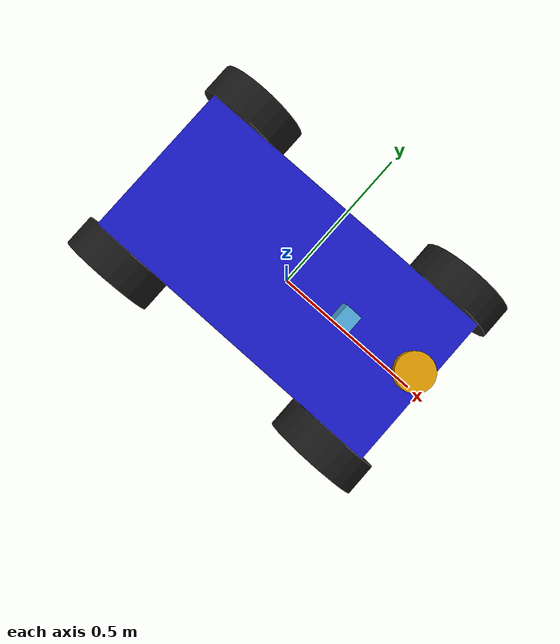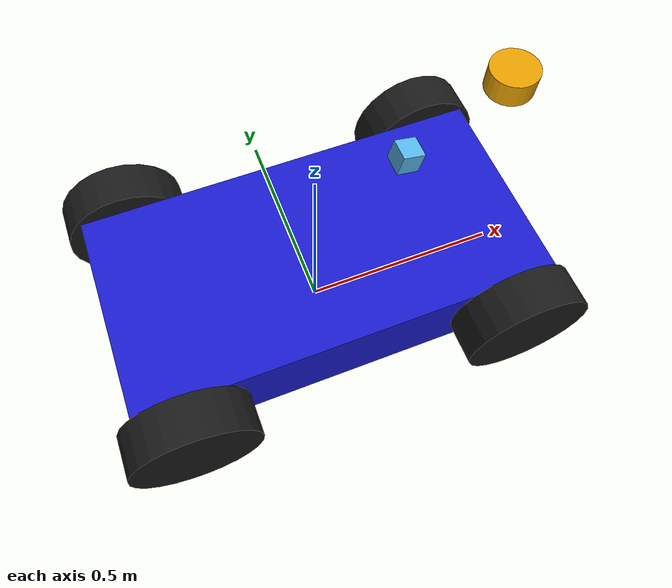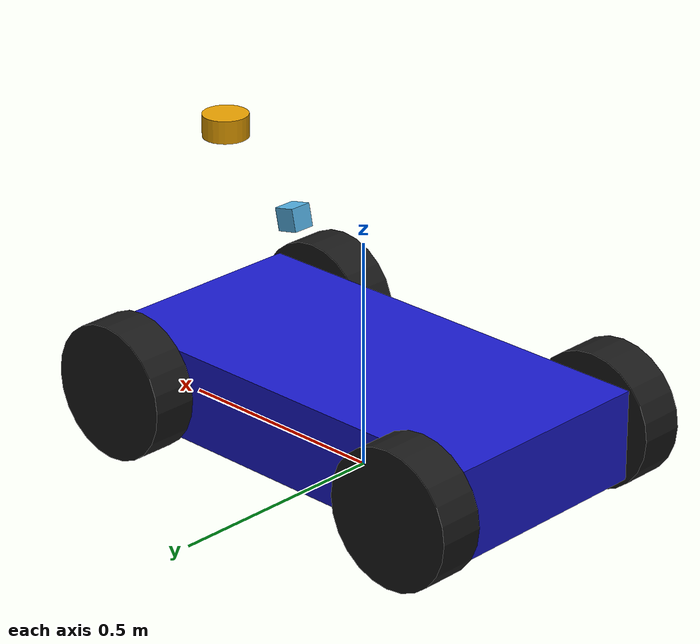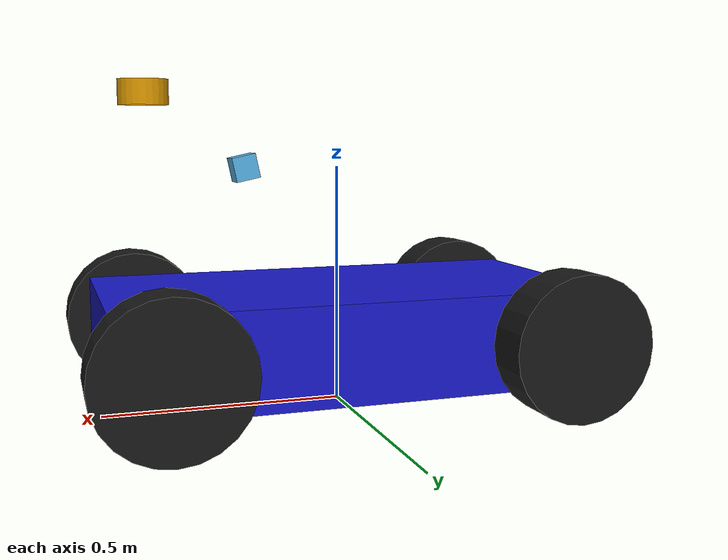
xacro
<?xml version="1.0"?>
<robot xmlns:xacro="http://www.ros.org/wiki/xacro" name="adas_vehicle">

  <!-- Base Link -->
  <link name="base_link">
    <!-- Base link must be dummy for Gazebo to work correctly with plugins sometimes -->
  </link>

  <joint name="chassis_joint" type="fixed">
    <parent link="base_link"/>
    <child link="chassis"/>
    <origin xyz="0 0 0.15" rpy="0 0 0"/>
  </joint>

  <!-- Chassis -->
  <link name="chassis">
    <visual>
      <geometry>
        <box size="1.0 0.5 0.2"/>
      </geometry>
      <material name="blue">
        <color rgba="0.1 0.1 0.8 1.0"/>
      </material>
    </visual>
    <collision>
      <geometry>
        <box size="1.0 0.5 0.2"/>
      </geometry>
    </collision>
    <inertial>
      <mass value="50.0"/>
      <origin xyz="0 0 0"/>
      <inertia ixx="1.2" ixy="0.0" ixz="0.0" iyy="4.3" iyz="0.0" izz="5.3"/>
    </inertial>
  </link>

  <!-- Wheels -->
  <xacro:macro name="wheel" params="prefix is_front x y z:=0">
    <link name="${prefix}_wheel">
      <visual>
        <origin xyz="0 0 0" rpy="1.5708 0 0"/>
        <geometry>
          <cylinder radius="0.15" length="0.1"/>
        </geometry>
        <material name="black">
          <color rgba="0.1 0.1 0.1 1.0"/>
        </material>
      </visual>
      <collision>
        <origin xyz="0 0 0" rpy="1.5708 0 0"/>
        <geometry>
          <cylinder radius="0.15" length="0.1"/>
        </geometry>
      </collision>
      <inertial>
        <mass value="5.0"/>
        <inertia ixx="0.03" ixy="0" ixz="0" iyy="0.03" iyz="0" izz="0.05"/>
      </inertial>
    </link>

    <xacro:if value="${is_front}">
      <link name="${prefix}_steer">
        <inertial>
          <mass value="1.0"/>
          <inertia ixx="0.01" ixy="0" ixz="0" iyy="0.01" iyz="0" izz="0.01"/>
        </inertial>
      </link>
      <joint name="${prefix}_steer_joint" type="revolute">
        <parent link="chassis"/>
        <child link="${prefix}_steer"/>
        <origin xyz="${x} ${y} ${z}"/>
        <axis xyz="0 0 1"/>
        <limit lower="-0.6" upper="0.6" effort="100.0" velocity="2.0"/>
      </joint>
      <joint name="${prefix}_wheel_joint" type="continuous">
        <parent link="${prefix}_steer"/>
        <child link="${prefix}_wheel"/>
        <origin xyz="0 0 0"/>
        <axis xyz="0 1 0"/>
      </joint>
    </xacro:if>

    <xacro:unless value="${is_front}">
      <joint name="${prefix}_wheel_joint" type="continuous">
        <parent link="chassis"/>
        <child link="${prefix}_wheel"/>
        <origin xyz="${x} ${y} ${z}"/>
        <axis xyz="0 1 0"/>
        <limit effort="500.0" velocity="150.0"/>
      </joint>
    </xacro:unless>
  </xacro:macro>

  <xacro:wheel prefix="front_left" is_front="true" x="0.4" y="0.3"/>
  <xacro:wheel prefix="front_right" is_front="true" x="0.4" y="-0.3"/>
  <xacro:wheel prefix="rear_left" is_front="false" x="-0.4" y="0.3"/>
  <xacro:wheel prefix="rear_right" is_front="false" x="-0.4" y="-0.3"/>

  <!-- Sensors -->
  <!-- Lidar -->
  <link name="lidar_link">
    <visual>
      <geometry><cylinder radius="0.05" length="0.05"/></geometry>
    </visual>
  </link>
  <joint name="lidar_joint" type="fixed">
    <parent link="chassis"/>
    <child link="lidar_link"/>
    <origin xyz="0.4 0 0.5" rpy="0 0 0"/>
  </joint>

  <!-- Camera -->
  <link name="camera_link">
    <visual>
      <geometry><box size="0.05 0.05 0.05"/></geometry>
    </visual>
  </link>
  <joint name="camera_joint" type="fixed">
    <parent link="chassis"/>
    <child link="camera_link"/>
    <!-- Cockpit view: raised above roof, tilted 12° down so front wheels are visible -->
    <origin xyz="0.2 0 0.35" rpy="0 0.21 0"/>
  </joint>

  <!-- IMU -->
  <link name="imu_link"/>
  <joint name="imu_joint" type="fixed">
    <parent link="chassis"/>
    <child link="imu_link"/>
    <origin xyz="0 0 0" rpy="0 0 0"/>
  </joint>

  <!-- Ackermann Drive Plugin — proper front-wheel steering + rear-wheel drive -->
  <gazebo>
    <plugin name="ackermann_drive" filename="libgazebo_ros_ackermann_drive.so">
      <ros>
        <remapping>cmd_vel:=cmd_vel</remapping>
        <remapping>odom:=odom</remapping>
        <remapping>distance:=distance</remapping>
      </ros>

      <update_rate>50</update_rate>

      <!-- Front steering joints -->
      <front_left_joint>front_left_wheel_joint</front_left_joint>
      <front_right_joint>front_right_wheel_joint</front_right_joint>
      <left_steering_joint>front_left_steer_joint</left_steering_joint>
      <right_steering_joint>front_right_steer_joint</right_steering_joint>

      <!-- Rear drive joints -->
      <rear_left_joint>rear_left_wheel_joint</rear_left_joint>
      <rear_right_joint>rear_right_wheel_joint</rear_right_joint>

      <!-- Kinematics -->
      <wheel_separation>0.6</wheel_separation>
      <wheel_base>0.8</wheel_base>
      <wheel_diameter>0.3</wheel_diameter>

      <!-- Geometry -->
      <max_steer>0.6</max_steer>
      <max_speed>20</max_speed>

      <!-- PID tuning -->
      <left_steering_pid_gain>1500 0 1</left_steering_pid_gain>
      <left_steering_i_range>0 0</left_steering_i_range>
      <right_steering_pid_gain>1500 0 1</right_steering_pid_gain>
      <right_steering_i_range>0 0</right_steering_i_range>
      <linear_velocity_pid_gain>1000 0 1</linear_velocity_pid_gain>
      <linear_velocity_i_range>0 0</linear_velocity_i_range>

      <!-- Output -->
      <publish_odom>true</publish_odom>
      <publish_odom_tf>false</publish_odom_tf>
      <publish_wheel_tf>false</publish_wheel_tf>
      <publish_distance>true</publish_distance>

      <odometry_frame>odom</odometry_frame>
      <robot_base_frame>base_link</robot_base_frame>
    </plugin>
  </gazebo>

  <!-- Joint State Publisher — for RViz visualization -->
  <gazebo>
    <plugin name="joint_state_pub" filename="libgazebo_ros_joint_state_publisher.so">
      <ros>
        <remapping>~/out:=joint_states</remapping>
      </ros>
      <update_rate>50</update_rate>
      <joint_name>front_left_steer_joint</joint_name>
      <joint_name>front_right_steer_joint</joint_name>
      <joint_name>rear_left_wheel_joint</joint_name>
      <joint_name>rear_right_wheel_joint</joint_name>
    </plugin>
  </gazebo>

  <!-- Gazebo Sensor Plugins -->
  <gazebo reference="lidar_link">
    <sensor type="ray" name="lidar_sensor">
      <ray>
        <scan>
          <horizontal>
            <samples>720</samples>
            <resolution>1</resolution>
            <min_angle>-3.14159</min_angle>
            <max_angle>3.14159</max_angle>
          </horizontal>
        </scan>
        <range>
          <min>0.8</min>
          <max>100.0</max>
        </range>
      </ray>
      <plugin name="gazebo_ros_laser" filename="libgazebo_ros_ray_sensor.so">
        <ros>
          <remapping>~/out:=scan</remapping>
        </ros>
        <output_type>sensor_msgs/LaserScan</output_type>
      </plugin>
    </sensor>
  </gazebo>

  <gazebo reference="camera_link">
    <sensor type="camera" name="camera_sensor">
      <camera>
        <horizontal_fov>1.745</horizontal_fov>
        <image>
          <width>640</width>
          <height>480</height>
        </image>
        <clip>
          <near>0.1</near>
          <far>100</far>
        </clip>
      </camera>
      <plugin name="gazebo_ros_camera" filename="libgazebo_ros_camera.so">
        <ros>
          <remapping>~/image_raw:=image_raw</remapping>
          <remapping>~/camera_info:=camera_info</remapping>
        </ros>
      </plugin>
    </sensor>
  </gazebo>

  <gazebo reference="imu_link">
    <sensor name="imu_sensor" type="imu">
      <always_on>true</always_on>
      <update_rate>100</update_rate>
      <plugin name="gazebo_ros_imu" filename="libgazebo_ros_imu_sensor.so">
        <ros>
          <remapping>~/out:=imu/data</remapping>
        </ros>
      </plugin>
    </sensor>
  </gazebo>

</robot>
